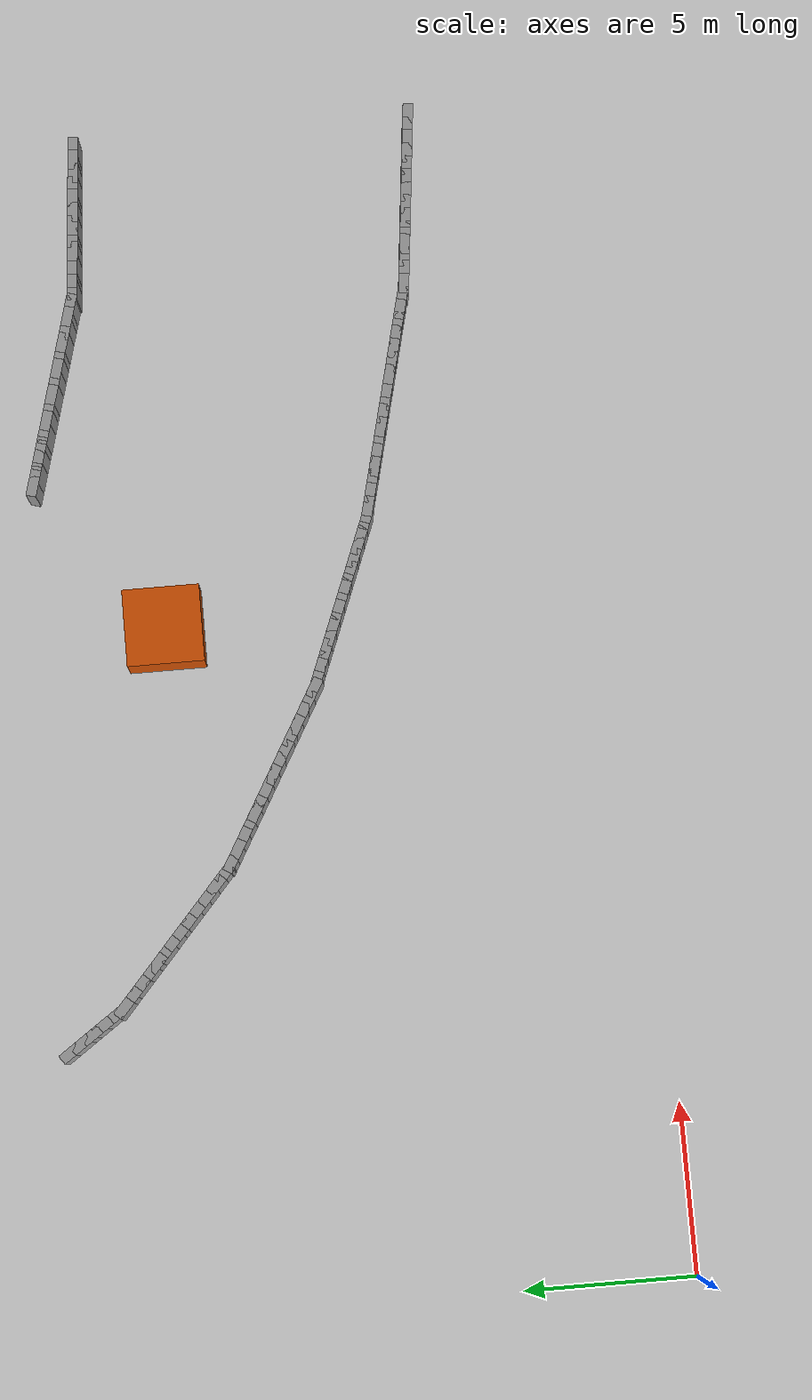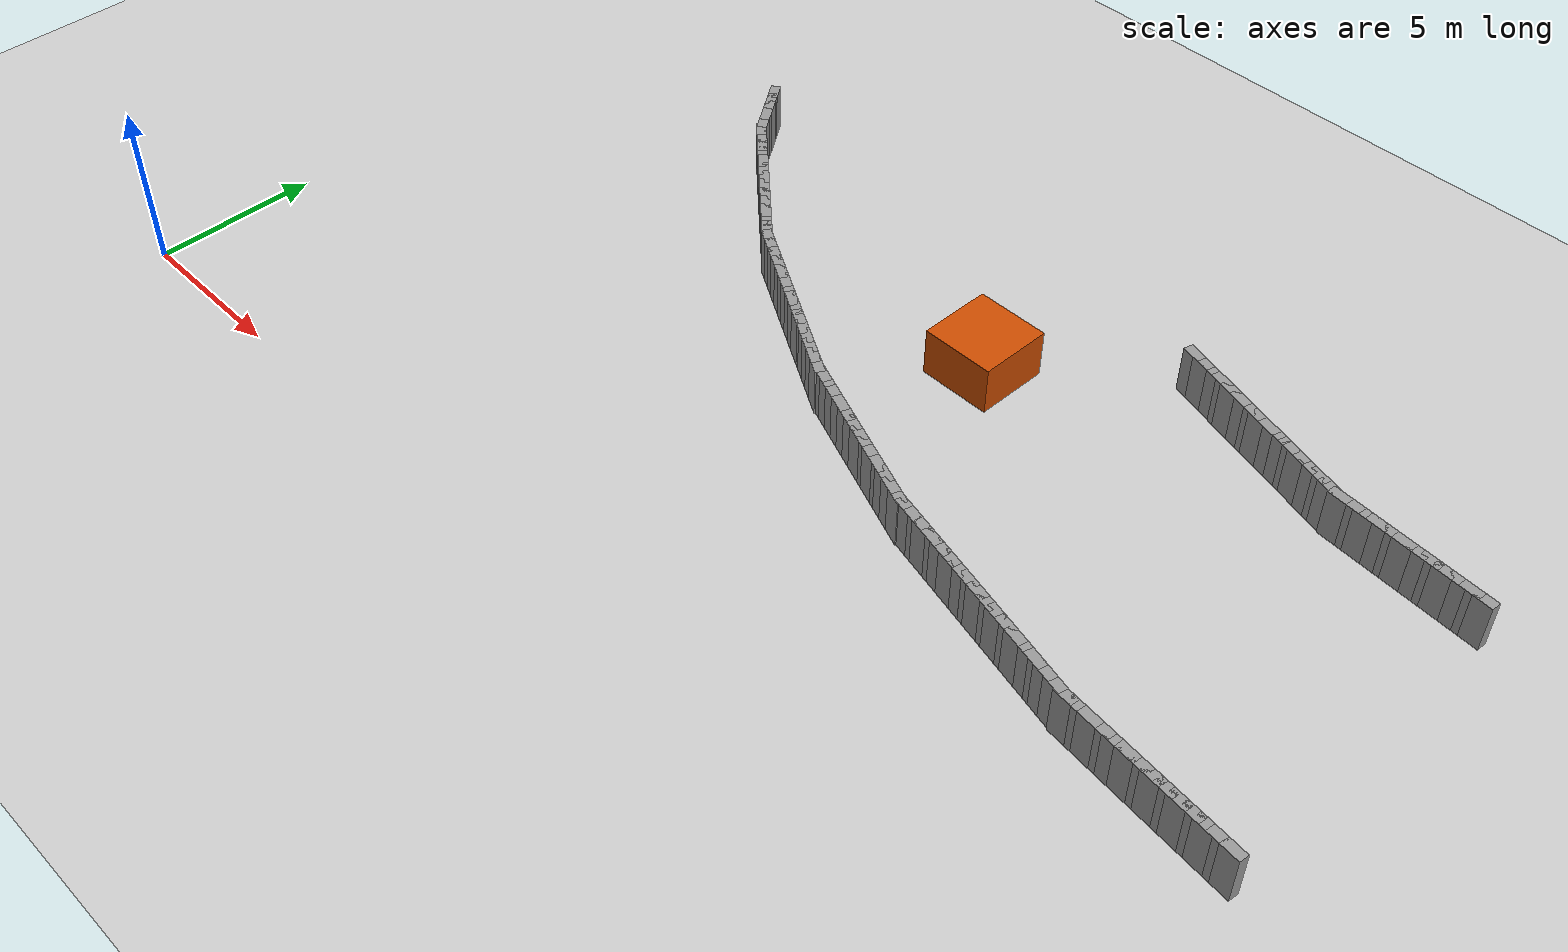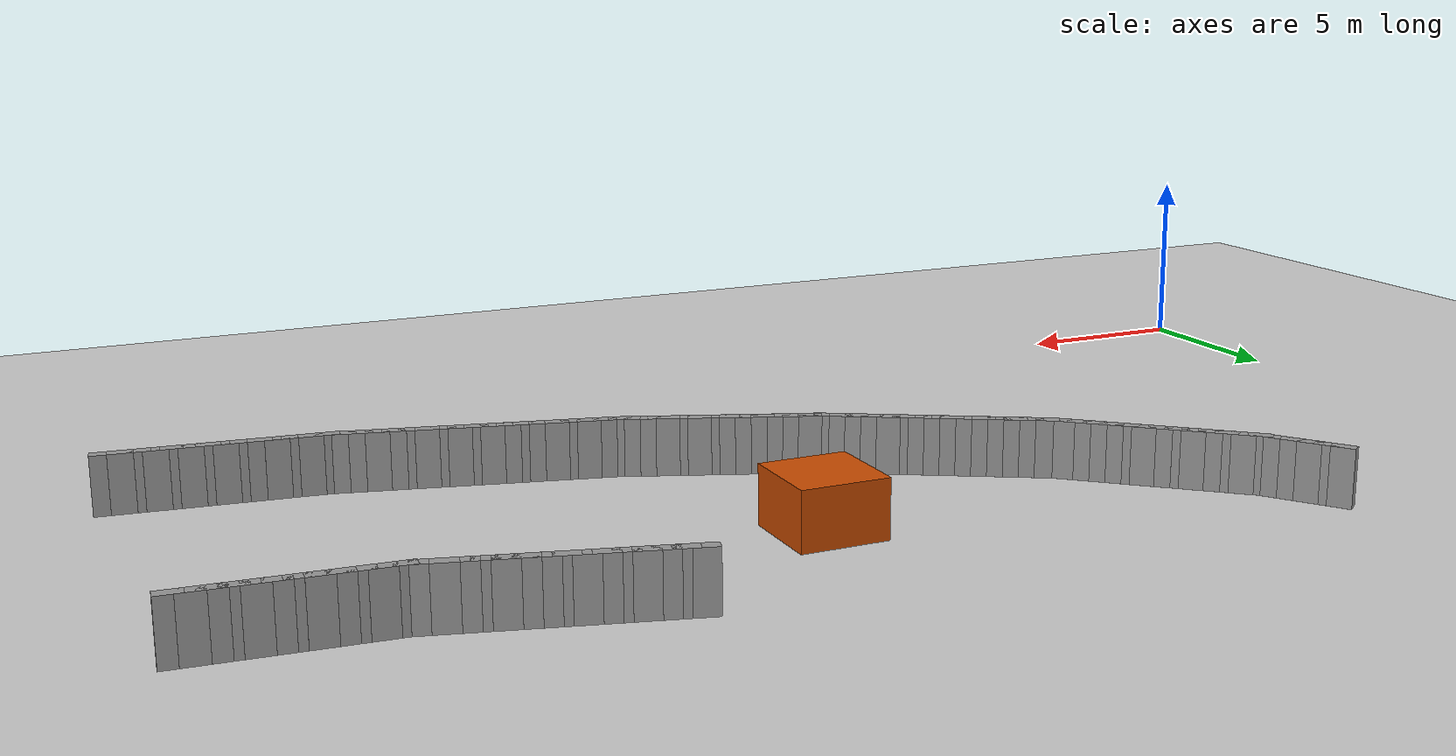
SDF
<sdf version="1.5">
 <world name="img_ellipse_obs">
  <include><uri>model://sun</uri></include>
  <include><uri>model://ground_plane</uri></include>
  <model name="wallL_27">
   <static>true</static>
   <pose>7.863 17.387 0.750 0 0 -0.961</pose>
   <link name="link">
    <collision name="col"><geometry><box><size>0.600 0.300 1.500</size></box></geometry></collision>
    <visual name="vis">
     <geometry><box><size>0.600 0.300 1.500</size></box></geometry>
     <material><ambient>0.6 0.6 0.6 1</ambient><diffuse>0.6 0.6 0.6 1</diffuse></material>
    </visual>
   </link>
  </model>
  <model name="wallL_28">
   <static>true</static>
   <pose>8.092 17.059 0.750 0 0 -0.961</pose>
   <link name="link">
    <collision name="col"><geometry><box><size>0.600 0.300 1.500</size></box></geometry></collision>
    <visual name="vis">
     <geometry><box><size>0.600 0.300 1.500</size></box></geometry>
     <material><ambient>0.6 0.6 0.6 1</ambient><diffuse>0.6 0.6 0.6 1</diffuse></material>
    </visual>
   </link>
  </model>
  <model name="wallL_29">
   <static>true</static>
   <pose>8.321 16.732 0.750 0 0 -0.961</pose>
   <link name="link">
    <collision name="col"><geometry><box><size>0.600 0.300 1.500</size></box></geometry></collision>
    <visual name="vis">
     <geometry><box><size>0.600 0.300 1.500</size></box></geometry>
     <material><ambient>0.6 0.6 0.6 1</ambient><diffuse>0.6 0.6 0.6 1</diffuse></material>
    </visual>
   </link>
  </model>
  <model name="wallL_30">
   <static>true</static>
   <pose>8.550 16.404 0.750 0 0 -0.961</pose>
   <link name="link">
    <collision name="col"><geometry><box><size>0.600 0.300 1.500</size></box></geometry></collision>
    <visual name="vis">
     <geometry><box><size>0.600 0.300 1.500</size></box></geometry>
     <material><ambient>0.6 0.6 0.6 1</ambient><diffuse>0.6 0.6 0.6 1</diffuse></material>
    </visual>
   </link>
  </model>
  <model name="wallL_31">
   <static>true</static>
   <pose>8.779 16.076 0.750 0 0 -0.961</pose>
   <link name="link">
    <collision name="col"><geometry><box><size>0.600 0.300 1.500</size></box></geometry></collision>
    <visual name="vis">
     <geometry><box><size>0.600 0.300 1.500</size></box></geometry>
     <material><ambient>0.6 0.6 0.6 1</ambient><diffuse>0.6 0.6 0.6 1</diffuse></material>
    </visual>
   </link>
  </model>
  <model name="wallL_32">
   <static>true</static>
   <pose>9.017 15.756 0.750 0 0 -0.722</pose>
   <link name="link">
    <collision name="col"><geometry><box><size>0.600 0.300 1.500</size></box></geometry></collision>
    <visual name="vis">
     <geometry><box><size>0.600 0.300 1.500</size></box></geometry>
     <material><ambient>0.6 0.6 0.6 1</ambient><diffuse>0.6 0.6 0.6 1</diffuse></material>
    </visual>
   </link>
  </model>
  <model name="wallL_33">
   <static>true</static>
   <pose>9.318 15.492 0.750 0 0 -0.722</pose>
   <link name="link">
    <collision name="col"><geometry><box><size>0.600 0.300 1.500</size></box></geometry></collision>
    <visual name="vis">
     <geometry><box><size>0.600 0.300 1.500</size></box></geometry>
     <material><ambient>0.6 0.6 0.6 1</ambient><diffuse>0.6 0.6 0.6 1</diffuse></material>
    </visual>
   </link>
  </model>
  <model name="wallL_34">
   <static>true</static>
   <pose>9.618 15.227 0.750 0 0 -0.722</pose>
   <link name="link">
    <collision name="col"><geometry><box><size>0.600 0.300 1.500</size></box></geometry></collision>
    <visual name="vis">
     <geometry><box><size>0.600 0.300 1.500</size></box></geometry>
     <material><ambient>0.6 0.6 0.6 1</ambient><diffuse>0.6 0.6 0.6 1</diffuse></material>
    </visual>
   </link>
  </model>
  <model name="wallL_35">
   <static>true</static>
   <pose>9.918 14.963 0.750 0 0 -0.722</pose>
   <link name="link">
    <collision name="col"><geometry><box><size>0.600 0.300 1.500</size></box></geometry></collision>
    <visual name="vis">
     <geometry><box><size>0.600 0.300 1.500</size></box></geometry>
     <material><ambient>0.6 0.6 0.6 1</ambient><diffuse>0.6 0.6 0.6 1</diffuse></material>
    </visual>
   </link>
  </model>
  <model name="wallL_36">
   <static>true</static>
   <pose>10.218 14.699 0.750 0 0 -0.722</pose>
   <link name="link">
    <collision name="col"><geometry><box><size>0.600 0.300 1.500</size></box></geometry></collision>
    <visual name="vis">
     <geometry><box><size>0.600 0.300 1.500</size></box></geometry>
     <material><ambient>0.6 0.6 0.6 1</ambient><diffuse>0.6 0.6 0.6 1</diffuse></material>
    </visual>
   </link>
  </model>
  <model name="wallL_37">
   <static>true</static>
   <pose>10.518 14.434 0.750 0 0 -0.722</pose>
   <link name="link">
    <collision name="col"><geometry><box><size>0.600 0.300 1.500</size></box></geometry></collision>
    <visual name="vis">
     <geometry><box><size>0.600 0.300 1.500</size></box></geometry>
     <material><ambient>0.6 0.6 0.6 1</ambient><diffuse>0.6 0.6 0.6 1</diffuse></material>
    </visual>
   </link>
  </model>
  <model name="wallL_38">
   <static>true</static>
   <pose>10.819 14.170 0.750 0 0 -0.722</pose>
   <link name="link">
    <collision name="col"><geometry><box><size>0.600 0.300 1.500</size></box></geometry></collision>
    <visual name="vis">
     <geometry><box><size>0.600 0.300 1.500</size></box></geometry>
     <material><ambient>0.6 0.6 0.6 1</ambient><diffuse>0.6 0.6 0.6 1</diffuse></material>
    </visual>
   </link>
  </model>
  <model name="wallL_39">
   <static>true</static>
   <pose>11.119 13.906 0.750 0 0 -0.722</pose>
   <link name="link">
    <collision name="col"><geometry><box><size>0.600 0.300 1.500</size></box></geometry></collision>
    <visual name="vis">
     <geometry><box><size>0.600 0.300 1.500</size></box></geometry>
     <material><ambient>0.6 0.6 0.6 1</ambient><diffuse>0.6 0.6 0.6 1</diffuse></material>
    </visual>
   </link>
  </model>
  <model name="wallL_40">
   <static>true</static>
   <pose>11.419 13.641 0.750 0 0 -0.722</pose>
   <link name="link">
    <collision name="col"><geometry><box><size>0.600 0.300 1.500</size></box></geometry></collision>
    <visual name="vis">
     <geometry><box><size>0.600 0.300 1.500</size></box></geometry>
     <material><ambient>0.6 0.6 0.6 1</ambient><diffuse>0.6 0.6 0.6 1</diffuse></material>
    </visual>
   </link>
  </model>
  <model name="wallL_41">
   <static>true</static>
   <pose>11.719 13.377 0.750 0 0 -0.722</pose>
   <link name="link">
    <collision name="col"><geometry><box><size>0.600 0.300 1.500</size></box></geometry></collision>
    <visual name="vis">
     <geometry><box><size>0.600 0.300 1.500</size></box></geometry>
     <material><ambient>0.6 0.6 0.6 1</ambient><diffuse>0.6 0.6 0.6 1</diffuse></material>
    </visual>
   </link>
  </model>
  <model name="wallL_42">
   <static>true</static>
   <pose>12.019 13.113 0.750 0 0 -0.722</pose>
   <link name="link">
    <collision name="col"><geometry><box><size>0.600 0.300 1.500</size></box></geometry></collision>
    <visual name="vis">
     <geometry><box><size>0.600 0.300 1.500</size></box></geometry>
     <material><ambient>0.6 0.6 0.6 1</ambient><diffuse>0.6 0.6 0.6 1</diffuse></material>
    </visual>
   </link>
  </model>
  <model name="wallL_43">
   <static>true</static>
   <pose>12.320 12.848 0.750 0 0 -0.722</pose>
   <link name="link">
    <collision name="col"><geometry><box><size>0.600 0.300 1.500</size></box></geometry></collision>
    <visual name="vis">
     <geometry><box><size>0.600 0.300 1.500</size></box></geometry>
     <material><ambient>0.6 0.6 0.6 1</ambient><diffuse>0.6 0.6 0.6 1</diffuse></material>
    </visual>
   </link>
  </model>
  <model name="wallL_44">
   <static>true</static>
   <pose>12.620 12.584 0.750 0 0 -0.722</pose>
   <link name="link">
    <collision name="col"><geometry><box><size>0.600 0.300 1.500</size></box></geometry></collision>
    <visual name="vis">
     <geometry><box><size>0.600 0.300 1.500</size></box></geometry>
     <material><ambient>0.6 0.6 0.6 1</ambient><diffuse>0.6 0.6 0.6 1</diffuse></material>
    </visual>
   </link>
  </model>
  <model name="wallL_45">
   <static>true</static>
   <pose>12.939 12.346 0.750 0 0 -0.520</pose>
   <link name="link">
    <collision name="col"><geometry><box><size>0.600 0.300 1.500</size></box></geometry></collision>
    <visual name="vis">
     <geometry><box><size>0.600 0.300 1.500</size></box></geometry>
     <material><ambient>0.6 0.6 0.6 1</ambient><diffuse>0.6 0.6 0.6 1</diffuse></material>
    </visual>
   </link>
  </model>
  <model name="wallL_46">
   <static>true</static>
   <pose>13.286 12.147 0.750 0 0 -0.520</pose>
   <link name="link">
    <collision name="col"><geometry><box><size>0.600 0.300 1.500</size></box></geometry></collision>
    <visual name="vis">
     <geometry><box><size>0.600 0.300 1.500</size></box></geometry>
     <material><ambient>0.6 0.6 0.6 1</ambient><diffuse>0.6 0.6 0.6 1</diffuse></material>
    </visual>
   </link>
  </model>
  <model name="wallL_47">
   <static>true</static>
   <pose>13.633 11.948 0.750 0 0 -0.520</pose>
   <link name="link">
    <collision name="col"><geometry><box><size>0.600 0.300 1.500</size></box></geometry></collision>
    <visual name="vis">
     <geometry><box><size>0.600 0.300 1.500</size></box></geometry>
     <material><ambient>0.6 0.6 0.6 1</ambient><diffuse>0.6 0.6 0.6 1</diffuse></material>
    </visual>
   </link>
  </model>
  <model name="wallL_48">
   <static>true</static>
   <pose>13.980 11.749 0.750 0 0 -0.520</pose>
   <link name="link">
    <collision name="col"><geometry><box><size>0.600 0.300 1.500</size></box></geometry></collision>
    <visual name="vis">
     <geometry><box><size>0.600 0.300 1.500</size></box></geometry>
     <material><ambient>0.6 0.6 0.6 1</ambient><diffuse>0.6 0.6 0.6 1</diffuse></material>
    </visual>
   </link>
  </model>
  <model name="wallL_49">
   <static>true</static>
   <pose>14.327 11.550 0.750 0 0 -0.520</pose>
   <link name="link">
    <collision name="col"><geometry><box><size>0.600 0.300 1.500</size></box></geometry></collision>
    <visual name="vis">
     <geometry><box><size>0.600 0.300 1.500</size></box></geometry>
     <material><ambient>0.6 0.6 0.6 1</ambient><diffuse>0.6 0.6 0.6 1</diffuse></material>
    </visual>
   </link>
  </model>
  <model name="wallL_50">
   <static>true</static>
   <pose>14.674 11.351 0.750 0 0 -0.520</pose>
   <link name="link">
    <collision name="col"><geometry><box><size>0.600 0.300 1.500</size></box></geometry></collision>
    <visual name="vis">
     <geometry><box><size>0.600 0.300 1.500</size></box></geometry>
     <material><ambient>0.6 0.6 0.6 1</ambient><diffuse>0.6 0.6 0.6 1</diffuse></material>
    </visual>
   </link>
  </model>
  <model name="wallL_51">
   <static>true</static>
   <pose>15.021 11.152 0.750 0 0 -0.520</pose>
   <link name="link">
    <collision name="col"><geometry><box><size>0.600 0.300 1.500</size></box></geometry></collision>
    <visual name="vis">
     <geometry><box><size>0.600 0.300 1.500</size></box></geometry>
     <material><ambient>0.6 0.6 0.6 1</ambient><diffuse>0.6 0.6 0.6 1</diffuse></material>
    </visual>
   </link>
  </model>
  <model name="wallL_52">
   <static>true</static>
   <pose>15.368 10.953 0.750 0 0 -0.520</pose>
   <link name="link">
    <collision name="col"><geometry><box><size>0.600 0.300 1.500</size></box></geometry></collision>
    <visual name="vis">
     <geometry><box><size>0.600 0.300 1.500</size></box></geometry>
     <material><ambient>0.6 0.6 0.6 1</ambient><diffuse>0.6 0.6 0.6 1</diffuse></material>
    </visual>
   </link>
  </model>
  <model name="wallL_53">
   <static>true</static>
   <pose>15.715 10.754 0.750 0 0 -0.520</pose>
   <link name="link">
    <collision name="col"><geometry><box><size>0.600 0.300 1.500</size></box></geometry></collision>
    <visual name="vis">
     <geometry><box><size>0.600 0.300 1.500</size></box></geometry>
     <material><ambient>0.6 0.6 0.6 1</ambient><diffuse>0.6 0.6 0.6 1</diffuse></material>
    </visual>
   </link>
  </model>
  <model name="wallL_54">
   <static>true</static>
   <pose>16.062 10.555 0.750 0 0 -0.520</pose>
   <link name="link">
    <collision name="col"><geometry><box><size>0.600 0.300 1.500</size></box></geometry></collision>
    <visual name="vis">
     <geometry><box><size>0.600 0.300 1.500</size></box></geometry>
     <material><ambient>0.6 0.6 0.6 1</ambient><diffuse>0.6 0.6 0.6 1</diffuse></material>
    </visual>
   </link>
  </model>
  <model name="wallL_55">
   <static>true</static>
   <pose>16.409 10.357 0.750 0 0 -0.520</pose>
   <link name="link">
    <collision name="col"><geometry><box><size>0.600 0.300 1.500</size></box></geometry></collision>
    <visual name="vis">
     <geometry><box><size>0.600 0.300 1.500</size></box></geometry>
     <material><ambient>0.6 0.6 0.6 1</ambient><diffuse>0.6 0.6 0.6 1</diffuse></material>
    </visual>
   </link>
  </model>
  <model name="wallL_56">
   <static>true</static>
   <pose>16.756 10.158 0.750 0 0 -0.520</pose>
   <link name="link">
    <collision name="col"><geometry><box><size>0.600 0.300 1.500</size></box></geometry></collision>
    <visual name="vis">
     <geometry><box><size>0.600 0.300 1.500</size></box></geometry>
     <material><ambient>0.6 0.6 0.6 1</ambient><diffuse>0.6 0.6 0.6 1</diffuse></material>
    </visual>
   </link>
  </model>
  <model name="wallL_57">
   <static>true</static>
   <pose>17.103 9.959 0.750 0 0 -0.520</pose>
   <link name="link">
    <collision name="col"><geometry><box><size>0.600 0.300 1.500</size></box></geometry></collision>
    <visual name="vis">
     <geometry><box><size>0.600 0.300 1.500</size></box></geometry>
     <material><ambient>0.6 0.6 0.6 1</ambient><diffuse>0.6 0.6 0.6 1</diffuse></material>
    </visual>
   </link>
  </model>
  <model name="wallL_58">
   <static>true</static>
   <pose>17.450 9.760 0.750 0 0 -0.520</pose>
   <link name="link">
    <collision name="col"><geometry><box><size>0.600 0.300 1.500</size></box></geometry></collision>
    <visual name="vis">
     <geometry><box><size>0.600 0.300 1.500</size></box></geometry>
     <material><ambient>0.6 0.6 0.6 1</ambient><diffuse>0.6 0.6 0.6 1</diffuse></material>
    </visual>
   </link>
  </model>
  <model name="wallL_59">
   <static>true</static>
   <pose>17.797 9.561 0.750 0 0 -0.520</pose>
   <link name="link">
    <collision name="col"><geometry><box><size>0.600 0.300 1.500</size></box></geometry></collision>
    <visual name="vis">
     <geometry><box><size>0.600 0.300 1.500</size></box></geometry>
     <material><ambient>0.6 0.6 0.6 1</ambient><diffuse>0.6 0.6 0.6 1</diffuse></material>
    </visual>
   </link>
  </model>
  <model name="wallL_60">
   <static>true</static>
   <pose>18.167 9.410 0.750 0 0 -0.376</pose>
   <link name="link">
    <collision name="col"><geometry><box><size>0.600 0.300 1.500</size></box></geometry></collision>
    <visual name="vis">
     <geometry><box><size>0.600 0.300 1.500</size></box></geometry>
     <material><ambient>0.6 0.6 0.6 1</ambient><diffuse>0.6 0.6 0.6 1</diffuse></material>
    </visual>
   </link>
  </model>
  <model name="wallL_61">
   <static>true</static>
   <pose>18.539 9.263 0.750 0 0 -0.376</pose>
   <link name="link">
    <collision name="col"><geometry><box><size>0.600 0.300 1.500</size></box></geometry></collision>
    <visual name="vis">
     <geometry><box><size>0.600 0.300 1.500</size></box></geometry>
     <material><ambient>0.6 0.6 0.6 1</ambient><diffuse>0.6 0.6 0.6 1</diffuse></material>
    </visual>
   </link>
  </model>
  <model name="wallL_62">
   <static>true</static>
   <pose>18.911 9.116 0.750 0 0 -0.376</pose>
   <link name="link">
    <collision name="col"><geometry><box><size>0.600 0.300 1.500</size></box></geometry></collision>
    <visual name="vis">
     <geometry><box><size>0.600 0.300 1.500</size></box></geometry>
     <material><ambient>0.6 0.6 0.6 1</ambient><diffuse>0.6 0.6 0.6 1</diffuse></material>
    </visual>
   </link>
  </model>
  <model name="wallL_63">
   <static>true</static>
   <pose>19.283 8.969 0.750 0 0 -0.376</pose>
   <link name="link">
    <collision name="col"><geometry><box><size>0.600 0.300 1.500</size></box></geometry></collision>
    <visual name="vis">
     <geometry><box><size>0.600 0.300 1.500</size></box></geometry>
     <material><ambient>0.6 0.6 0.6 1</ambient><diffuse>0.6 0.6 0.6 1</diffuse></material>
    </visual>
   </link>
  </model>
  <model name="wallL_64">
   <static>true</static>
   <pose>19.655 8.822 0.750 0 0 -0.376</pose>
   <link name="link">
    <collision name="col"><geometry><box><size>0.600 0.300 1.500</size></box></geometry></collision>
    <visual name="vis">
     <geometry><box><size>0.600 0.300 1.500</size></box></geometry>
     <material><ambient>0.6 0.6 0.6 1</ambient><diffuse>0.6 0.6 0.6 1</diffuse></material>
    </visual>
   </link>
  </model>
  <model name="wallL_65">
   <static>true</static>
   <pose>20.027 8.675 0.750 0 0 -0.376</pose>
   <link name="link">
    <collision name="col"><geometry><box><size>0.600 0.300 1.500</size></box></geometry></collision>
    <visual name="vis">
     <geometry><box><size>0.600 0.300 1.500</size></box></geometry>
     <material><ambient>0.6 0.6 0.6 1</ambient><diffuse>0.6 0.6 0.6 1</diffuse></material>
    </visual>
   </link>
  </model>
  <model name="wallL_66">
   <static>true</static>
   <pose>20.399 8.528 0.750 0 0 -0.376</pose>
   <link name="link">
    <collision name="col"><geometry><box><size>0.600 0.300 1.500</size></box></geometry></collision>
    <visual name="vis">
     <geometry><box><size>0.600 0.300 1.500</size></box></geometry>
     <material><ambient>0.6 0.6 0.6 1</ambient><diffuse>0.6 0.6 0.6 1</diffuse></material>
    </visual>
   </link>
  </model>
  <model name="wallL_67">
   <static>true</static>
   <pose>20.772 8.381 0.750 0 0 -0.376</pose>
   <link name="link">
    <collision name="col"><geometry><box><size>0.600 0.300 1.500</size></box></geometry></collision>
    <visual name="vis">
     <geometry><box><size>0.600 0.300 1.500</size></box></geometry>
     <material><ambient>0.6 0.6 0.6 1</ambient><diffuse>0.6 0.6 0.6 1</diffuse></material>
    </visual>
   </link>
  </model>
  <model name="wallL_68">
   <static>true</static>
   <pose>21.144 8.234 0.750 0 0 -0.376</pose>
   <link name="link">
    <collision name="col"><geometry><box><size>0.600 0.300 1.500</size></box></geometry></collision>
    <visual name="vis">
     <geometry><box><size>0.600 0.300 1.500</size></box></geometry>
     <material><ambient>0.6 0.6 0.6 1</ambient><diffuse>0.6 0.6 0.6 1</diffuse></material>
    </visual>
   </link>
  </model>
  <model name="wallL_69">
   <static>true</static>
   <pose>21.516 8.088 0.750 0 0 -0.376</pose>
   <link name="link">
    <collision name="col"><geometry><box><size>0.600 0.300 1.500</size></box></geometry></collision>
    <visual name="vis">
     <geometry><box><size>0.600 0.300 1.500</size></box></geometry>
     <material><ambient>0.6 0.6 0.6 1</ambient><diffuse>0.6 0.6 0.6 1</diffuse></material>
    </visual>
   </link>
  </model>
  <model name="wallL_70">
   <static>true</static>
   <pose>21.888 7.941 0.750 0 0 -0.376</pose>
   <link name="link">
    <collision name="col"><geometry><box><size>0.600 0.300 1.500</size></box></geometry></collision>
    <visual name="vis">
     <geometry><box><size>0.600 0.300 1.500</size></box></geometry>
     <material><ambient>0.6 0.6 0.6 1</ambient><diffuse>0.6 0.6 0.6 1</diffuse></material>
    </visual>
   </link>
  </model>
  <model name="wallL_71">
   <static>true</static>
   <pose>22.260 7.794 0.750 0 0 -0.376</pose>
   <link name="link">
    <collision name="col"><geometry><box><size>0.600 0.300 1.500</size></box></geometry></collision>
    <visual name="vis">
     <geometry><box><size>0.600 0.300 1.500</size></box></geometry>
     <material><ambient>0.6 0.6 0.6 1</ambient><diffuse>0.6 0.6 0.6 1</diffuse></material>
    </visual>
   </link>
  </model>
  <model name="wallL_72">
   <static>true</static>
   <pose>22.632 7.647 0.750 0 0 -0.376</pose>
   <link name="link">
    <collision name="col"><geometry><box><size>0.600 0.300 1.500</size></box></geometry></collision>
    <visual name="vis">
     <geometry><box><size>0.600 0.300 1.500</size></box></geometry>
     <material><ambient>0.6 0.6 0.6 1</ambient><diffuse>0.6 0.6 0.6 1</diffuse></material>
    </visual>
   </link>
  </model>
  <model name="wallL_73">
   <static>true</static>
   <pose>23.018 7.543 0.750 0 0 -0.242</pose>
   <link name="link">
    <collision name="col"><geometry><box><size>0.600 0.300 1.500</size></box></geometry></collision>
    <visual name="vis">
     <geometry><box><size>0.600 0.300 1.500</size></box></geometry>
     <material><ambient>0.6 0.6 0.6 1</ambient><diffuse>0.6 0.6 0.6 1</diffuse></material>
    </visual>
   </link>
  </model>
  <model name="wallL_74">
   <static>true</static>
   <pose>23.406 7.448 0.750 0 0 -0.242</pose>
   <link name="link">
    <collision name="col"><geometry><box><size>0.600 0.300 1.500</size></box></geometry></collision>
    <visual name="vis">
     <geometry><box><size>0.600 0.300 1.500</size></box></geometry>
     <material><ambient>0.6 0.6 0.6 1</ambient><diffuse>0.6 0.6 0.6 1</diffuse></material>
    </visual>
   </link>
  </model>
  <model name="wallL_75">
   <static>true</static>
   <pose>23.794 7.352 0.750 0 0 -0.242</pose>
   <link name="link">
    <collision name="col"><geometry><box><size>0.600 0.300 1.500</size></box></geometry></collision>
    <visual name="vis">
     <geometry><box><size>0.600 0.300 1.500</size></box></geometry>
     <material><ambient>0.6 0.6 0.6 1</ambient><diffuse>0.6 0.6 0.6 1</diffuse></material>
    </visual>
   </link>
  </model>
  <model name="wallL_76">
   <static>true</static>
   <pose>24.183 7.256 0.750 0 0 -0.242</pose>
   <link name="link">
    <collision name="col"><geometry><box><size>0.600 0.300 1.500</size></box></geometry></collision>
    <visual name="vis">
     <geometry><box><size>0.600 0.300 1.500</size></box></geometry>
     <material><ambient>0.6 0.6 0.6 1</ambient><diffuse>0.6 0.6 0.6 1</diffuse></material>
    </visual>
   </link>
  </model>
  <model name="wallL_77">
   <static>true</static>
   <pose>24.571 7.160 0.750 0 0 -0.242</pose>
   <link name="link">
    <collision name="col"><geometry><box><size>0.600 0.300 1.500</size></box></geometry></collision>
    <visual name="vis">
     <geometry><box><size>0.600 0.300 1.500</size></box></geometry>
     <material><ambient>0.6 0.6 0.6 1</ambient><diffuse>0.6 0.6 0.6 1</diffuse></material>
    </visual>
   </link>
  </model>
  <model name="wallL_78">
   <static>true</static>
   <pose>24.959 7.064 0.750 0 0 -0.242</pose>
   <link name="link">
    <collision name="col"><geometry><box><size>0.600 0.300 1.500</size></box></geometry></collision>
    <visual name="vis">
     <geometry><box><size>0.600 0.300 1.500</size></box></geometry>
     <material><ambient>0.6 0.6 0.6 1</ambient><diffuse>0.6 0.6 0.6 1</diffuse></material>
    </visual>
   </link>
  </model>
  <model name="wallL_79">
   <static>true</static>
   <pose>25.348 6.968 0.750 0 0 -0.242</pose>
   <link name="link">
    <collision name="col"><geometry><box><size>0.600 0.300 1.500</size></box></geometry></collision>
    <visual name="vis">
     <geometry><box><size>0.600 0.300 1.500</size></box></geometry>
     <material><ambient>0.6 0.6 0.6 1</ambient><diffuse>0.6 0.6 0.6 1</diffuse></material>
    </visual>
   </link>
  </model>
  <model name="wallL_80">
   <static>true</static>
   <pose>25.736 6.873 0.750 0 0 -0.242</pose>
   <link name="link">
    <collision name="col"><geometry><box><size>0.600 0.300 1.500</size></box></geometry></collision>
    <visual name="vis">
     <geometry><box><size>0.600 0.300 1.500</size></box></geometry>
     <material><ambient>0.6 0.6 0.6 1</ambient><diffuse>0.6 0.6 0.6 1</diffuse></material>
    </visual>
   </link>
  </model>
  <model name="wallL_81">
   <static>true</static>
   <pose>26.124 6.777 0.750 0 0 -0.242</pose>
   <link name="link">
    <collision name="col"><geometry><box><size>0.600 0.300 1.500</size></box></geometry></collision>
    <visual name="vis">
     <geometry><box><size>0.600 0.300 1.500</size></box></geometry>
     <material><ambient>0.6 0.6 0.6 1</ambient><diffuse>0.6 0.6 0.6 1</diffuse></material>
    </visual>
   </link>
  </model>
  <model name="wallL_82">
   <static>true</static>
   <pose>26.513 6.681 0.750 0 0 -0.242</pose>
   <link name="link">
    <collision name="col"><geometry><box><size>0.600 0.300 1.500</size></box></geometry></collision>
    <visual name="vis">
     <geometry><box><size>0.600 0.300 1.500</size></box></geometry>
     <material><ambient>0.6 0.6 0.6 1</ambient><diffuse>0.6 0.6 0.6 1</diffuse></material>
    </visual>
   </link>
  </model>
  <model name="wallL_83">
   <static>true</static>
   <pose>26.901 6.585 0.750 0 0 -0.242</pose>
   <link name="link">
    <collision name="col"><geometry><box><size>0.600 0.300 1.500</size></box></geometry></collision>
    <visual name="vis">
     <geometry><box><size>0.600 0.300 1.500</size></box></geometry>
     <material><ambient>0.6 0.6 0.6 1</ambient><diffuse>0.6 0.6 0.6 1</diffuse></material>
    </visual>
   </link>
  </model>
  <model name="wallL_84">
   <static>true</static>
   <pose>27.290 6.489 0.750 0 0 -0.242</pose>
   <link name="link">
    <collision name="col"><geometry><box><size>0.600 0.300 1.500</size></box></geometry></collision>
    <visual name="vis">
     <geometry><box><size>0.600 0.300 1.500</size></box></geometry>
     <material><ambient>0.6 0.6 0.6 1</ambient><diffuse>0.6 0.6 0.6 1</diffuse></material>
    </visual>
   </link>
  </model>
  <model name="wallL_85">
   <static>true</static>
   <pose>27.678 6.393 0.750 0 0 -0.242</pose>
   <link name="link">
    <collision name="col"><geometry><box><size>0.600 0.300 1.500</size></box></geometry></collision>
    <visual name="vis">
     <geometry><box><size>0.600 0.300 1.500</size></box></geometry>
     <material><ambient>0.6 0.6 0.6 1</ambient><diffuse>0.6 0.6 0.6 1</diffuse></material>
    </visual>
   </link>
  </model>
  <model name="wallL_86">
   <static>true</static>
   <pose>28.066 6.298 0.750 0 0 -0.242</pose>
   <link name="link">
    <collision name="col"><geometry><box><size>0.600 0.300 1.500</size></box></geometry></collision>
    <visual name="vis">
     <geometry><box><size>0.600 0.300 1.500</size></box></geometry>
     <material><ambient>0.6 0.6 0.6 1</ambient><diffuse>0.6 0.6 0.6 1</diffuse></material>
    </visual>
   </link>
  </model>
  <model name="wallL_87">
   <static>true</static>
   <pose>28.455 6.202 0.750 0 0 -0.242</pose>
   <link name="link">
    <collision name="col"><geometry><box><size>0.600 0.300 1.500</size></box></geometry></collision>
    <visual name="vis">
     <geometry><box><size>0.600 0.300 1.500</size></box></geometry>
     <material><ambient>0.6 0.6 0.6 1</ambient><diffuse>0.6 0.6 0.6 1</diffuse></material>
    </visual>
   </link>
  </model>
  <model name="wallL_88">
   <static>true</static>
   <pose>28.843 6.106 0.750 0 0 -0.242</pose>
   <link name="link">
    <collision name="col"><geometry><box><size>0.600 0.300 1.500</size></box></geometry></collision>
    <visual name="vis">
     <geometry><box><size>0.600 0.300 1.500</size></box></geometry>
     <material><ambient>0.6 0.6 0.6 1</ambient><diffuse>0.6 0.6 0.6 1</diffuse></material>
    </visual>
   </link>
  </model>
  <model name="wallL_89">
   <static>true</static>
   <pose>29.231 6.010 0.750 0 0 -0.242</pose>
   <link name="link">
    <collision name="col"><geometry><box><size>0.600 0.300 1.500</size></box></geometry></collision>
    <visual name="vis">
     <geometry><box><size>0.600 0.300 1.500</size></box></geometry>
     <material><ambient>0.6 0.6 0.6 1</ambient><diffuse>0.6 0.6 0.6 1</diffuse></material>
    </visual>
   </link>
  </model>
  <model name="wallL_90">
   <static>true</static>
   <pose>29.621 5.920 0.750 0 0 -0.109</pose>
   <link name="link">
    <collision name="col"><geometry><box><size>0.600 0.300 1.500</size></box></geometry></collision>
    <visual name="vis">
     <geometry><box><size>0.600 0.300 1.500</size></box></geometry>
     <material><ambient>0.6 0.6 0.6 1</ambient><diffuse>0.6 0.6 0.6 1</diffuse></material>
    </visual>
   </link>
  </model>
  <model name="wallL_91">
   <static>true</static>
   <pose>30.018 5.877 0.750 0 0 -0.109</pose>
   <link name="link">
    <collision name="col"><geometry><box><size>0.600 0.300 1.500</size></box></geometry></collision>
    <visual name="vis">
     <geometry><box><size>0.600 0.300 1.500</size></box></geometry>
     <material><ambient>0.6 0.6 0.6 1</ambient><diffuse>0.6 0.6 0.6 1</diffuse></material>
    </visual>
   </link>
  </model>
  <model name="wallL_92">
   <static>true</static>
   <pose>30.416 5.833 0.750 0 0 -0.109</pose>
   <link name="link">
    <collision name="col"><geometry><box><size>0.600 0.300 1.500</size></box></geometry></collision>
    <visual name="vis">
     <geometry><box><size>0.600 0.300 1.500</size></box></geometry>
     <material><ambient>0.6 0.6 0.6 1</ambient><diffuse>0.6 0.6 0.6 1</diffuse></material>
    </visual>
   </link>
  </model>
  <model name="wallL_93">
   <static>true</static>
   <pose>30.814 5.790 0.750 0 0 -0.109</pose>
   <link name="link">
    <collision name="col"><geometry><box><size>0.600 0.300 1.500</size></box></geometry></collision>
    <visual name="vis">
     <geometry><box><size>0.600 0.300 1.500</size></box></geometry>
     <material><ambient>0.6 0.6 0.6 1</ambient><diffuse>0.6 0.6 0.6 1</diffuse></material>
    </visual>
   </link>
  </model>
  <model name="wallL_94">
   <static>true</static>
   <pose>31.211 5.746 0.750 0 0 -0.109</pose>
   <link name="link">
    <collision name="col"><geometry><box><size>0.600 0.300 1.500</size></box></geometry></collision>
    <visual name="vis">
     <geometry><box><size>0.600 0.300 1.500</size></box></geometry>
     <material><ambient>0.6 0.6 0.6 1</ambient><diffuse>0.6 0.6 0.6 1</diffuse></material>
    </visual>
   </link>
  </model>
  <model name="wallL_95">
   <static>true</static>
   <pose>31.609 5.702 0.750 0 0 -0.109</pose>
   <link name="link">
    <collision name="col"><geometry><box><size>0.600 0.300 1.500</size></box></geometry></collision>
    <visual name="vis">
     <geometry><box><size>0.600 0.300 1.500</size></box></geometry>
     <material><ambient>0.6 0.6 0.6 1</ambient><diffuse>0.6 0.6 0.6 1</diffuse></material>
    </visual>
   </link>
  </model>
  <model name="wallL_96">
   <static>true</static>
   <pose>32.006 5.659 0.750 0 0 -0.109</pose>
   <link name="link">
    <collision name="col"><geometry><box><size>0.600 0.300 1.500</size></box></geometry></collision>
    <visual name="vis">
     <geometry><box><size>0.600 0.300 1.500</size></box></geometry>
     <material><ambient>0.6 0.6 0.6 1</ambient><diffuse>0.6 0.6 0.6 1</diffuse></material>
    </visual>
   </link>
  </model>
  <model name="wallL_97">
   <static>true</static>
   <pose>32.404 5.615 0.750 0 0 -0.109</pose>
   <link name="link">
    <collision name="col"><geometry><box><size>0.600 0.300 1.500</size></box></geometry></collision>
    <visual name="vis">
     <geometry><box><size>0.600 0.300 1.500</size></box></geometry>
     <material><ambient>0.6 0.6 0.6 1</ambient><diffuse>0.6 0.6 0.6 1</diffuse></material>
    </visual>
   </link>
  </model>
  <model name="wallL_98">
   <static>true</static>
   <pose>32.802 5.572 0.750 0 0 -0.109</pose>
   <link name="link">
    <collision name="col"><geometry><box><size>0.600 0.300 1.500</size></box></geometry></collision>
    <visual name="vis">
     <geometry><box><size>0.600 0.300 1.500</size></box></geometry>
     <material><ambient>0.6 0.6 0.6 1</ambient><diffuse>0.6 0.6 0.6 1</diffuse></material>
    </visual>
   </link>
  </model>
  <model name="wallL_99">
   <static>true</static>
   <pose>33.199 5.528 0.750 0 0 -0.109</pose>
   <link name="link">
    <collision name="col"><geometry><box><size>0.600 0.300 1.500</size></box></geometry></collision>
    <visual name="vis">
     <geometry><box><size>0.600 0.300 1.500</size></box></geometry>
     <material><ambient>0.6 0.6 0.6 1</ambient><diffuse>0.6 0.6 0.6 1</diffuse></material>
    </visual>
   </link>
  </model>
  <model name="wallL_100">
   <static>true</static>
   <pose>33.597 5.485 0.750 0 0 -0.109</pose>
   <link name="link">
    <collision name="col"><geometry><box><size>0.600 0.300 1.500</size></box></geometry></collision>
    <visual name="vis">
     <geometry><box><size>0.600 0.300 1.500</size></box></geometry>
     <material><ambient>0.6 0.6 0.6 1</ambient><diffuse>0.6 0.6 0.6 1</diffuse></material>
    </visual>
   </link>
  </model>
  <model name="wallL_101">
   <static>true</static>
   <pose>33.995 5.441 0.750 0 0 -0.109</pose>
   <link name="link">
    <collision name="col"><geometry><box><size>0.600 0.300 1.500</size></box></geometry></collision>
    <visual name="vis">
     <geometry><box><size>0.600 0.300 1.500</size></box></geometry>
     <material><ambient>0.6 0.6 0.6 1</ambient><diffuse>0.6 0.6 0.6 1</diffuse></material>
    </visual>
   </link>
  </model>
  <model name="wallL_102">
   <static>true</static>
   <pose>34.392 5.398 0.750 0 0 -0.109</pose>
   <link name="link">
    <collision name="col"><geometry><box><size>0.600 0.300 1.500</size></box></geometry></collision>
    <visual name="vis">
     <geometry><box><size>0.600 0.300 1.500</size></box></geometry>
     <material><ambient>0.6 0.6 0.6 1</ambient><diffuse>0.6 0.6 0.6 1</diffuse></material>
    </visual>
   </link>
  </model>
  <model name="wallL_103">
   <static>true</static>
   <pose>34.790 5.354 0.750 0 0 -0.109</pose>
   <link name="link">
    <collision name="col"><geometry><box><size>0.600 0.300 1.500</size></box></geometry></collision>
    <visual name="vis">
     <geometry><box><size>0.600 0.300 1.500</size></box></geometry>
     <material><ambient>0.6 0.6 0.6 1</ambient><diffuse>0.6 0.6 0.6 1</diffuse></material>
    </visual>
   </link>
  </model>
  <model name="wallR_229">
   <static>true</static>
   <pose>34.611 15.384 0.750 0 0 3.066</pose>
   <link name="link">
    <collision name="col"><geometry><box><size>0.600 0.300 1.500</size></box></geometry></collision>
    <visual name="vis">
     <geometry><box><size>0.600 0.300 1.500</size></box></geometry>
     <material><ambient>0.6 0.6 0.6 1</ambient><diffuse>0.6 0.6 0.6 1</diffuse></material>
    </visual>
   </link>
  </model>
  <model name="wallR_230">
   <static>true</static>
   <pose>34.212 15.415 0.750 0 0 3.066</pose>
   <link name="link">
    <collision name="col"><geometry><box><size>0.600 0.300 1.500</size></box></geometry></collision>
    <visual name="vis">
     <geometry><box><size>0.600 0.300 1.500</size></box></geometry>
     <material><ambient>0.6 0.6 0.6 1</ambient><diffuse>0.6 0.6 0.6 1</diffuse></material>
    </visual>
   </link>
  </model>
  <model name="wallR_231">
   <static>true</static>
   <pose>33.813 15.445 0.750 0 0 3.066</pose>
   <link name="link">
    <collision name="col"><geometry><box><size>0.600 0.300 1.500</size></box></geometry></collision>
    <visual name="vis">
     <geometry><box><size>0.600 0.300 1.500</size></box></geometry>
     <material><ambient>0.6 0.6 0.6 1</ambient><diffuse>0.6 0.6 0.6 1</diffuse></material>
    </visual>
   </link>
  </model>
  <model name="wallR_232">
   <static>true</static>
   <pose>33.414 15.475 0.750 0 0 3.066</pose>
   <link name="link">
    <collision name="col"><geometry><box><size>0.600 0.300 1.500</size></box></geometry></collision>
    <visual name="vis">
     <geometry><box><size>0.600 0.300 1.500</size></box></geometry>
     <material><ambient>0.6 0.6 0.6 1</ambient><diffuse>0.6 0.6 0.6 1</diffuse></material>
    </visual>
   </link>
  </model>
  <model name="wallR_233">
   <static>true</static>
   <pose>33.015 15.506 0.750 0 0 3.066</pose>
   <link name="link">
    <collision name="col"><geometry><box><size>0.600 0.300 1.500</size></box></geometry></collision>
    <visual name="vis">
     <geometry><box><size>0.600 0.300 1.500</size></box></geometry>
     <material><ambient>0.6 0.6 0.6 1</ambient><diffuse>0.6 0.6 0.6 1</diffuse></material>
    </visual>
   </link>
  </model>
  <model name="wallR_234">
   <static>true</static>
   <pose>32.616 15.536 0.750 0 0 3.066</pose>
   <link name="link">
    <collision name="col"><geometry><box><size>0.600 0.300 1.500</size></box></geometry></collision>
    <visual name="vis">
     <geometry><box><size>0.600 0.300 1.500</size></box></geometry>
     <material><ambient>0.6 0.6 0.6 1</ambient><diffuse>0.6 0.6 0.6 1</diffuse></material>
    </visual>
   </link>
  </model>
  <model name="wallR_235">
   <static>true</static>
   <pose>32.217 15.566 0.750 0 0 3.066</pose>
   <link name="link">
    <collision name="col"><geometry><box><size>0.600 0.300 1.500</size></box></geometry></collision>
    <visual name="vis">
     <geometry><box><size>0.600 0.300 1.500</size></box></geometry>
     <material><ambient>0.6 0.6 0.6 1</ambient><diffuse>0.6 0.6 0.6 1</diffuse></material>
    </visual>
   </link>
  </model>
  <model name="wallR_236">
   <static>true</static>
   <pose>31.819 15.597 0.750 0 0 3.066</pose>
   <link name="link">
    <collision name="col"><geometry><box><size>0.600 0.300 1.500</size></box></geometry></collision>
    <visual name="vis">
     <geometry><box><size>0.600 0.300 1.500</size></box></geometry>
     <material><ambient>0.6 0.6 0.6 1</ambient><diffuse>0.6 0.6 0.6 1</diffuse></material>
    </visual>
   </link>
  </model>
  <model name="wallR_237">
   <static>true</static>
   <pose>31.420 15.627 0.750 0 0 3.066</pose>
   <link name="link">
    <collision name="col"><geometry><box><size>0.600 0.300 1.500</size></box></geometry></collision>
    <visual name="vis">
     <geometry><box><size>0.600 0.300 1.500</size></box></geometry>
     <material><ambient>0.6 0.6 0.6 1</ambient><diffuse>0.6 0.6 0.6 1</diffuse></material>
    </visual>
   </link>
  </model>
  <model name="wallR_238">
   <static>true</static>
   <pose>31.021 15.657 0.750 0 0 3.066</pose>
   <link name="link">
    <collision name="col"><geometry><box><size>0.600 0.300 1.500</size></box></geometry></collision>
    <visual name="vis">
     <geometry><box><size>0.600 0.300 1.500</size></box></geometry>
     <material><ambient>0.6 0.6 0.6 1</ambient><diffuse>0.6 0.6 0.6 1</diffuse></material>
    </visual>
   </link>
  </model>
  <model name="wallR_239">
   <static>true</static>
   <pose>30.622 15.688 0.750 0 0 3.066</pose>
   <link name="link">
    <collision name="col"><geometry><box><size>0.600 0.300 1.500</size></box></geometry></collision>
    <visual name="vis">
     <geometry><box><size>0.600 0.300 1.500</size></box></geometry>
     <material><ambient>0.6 0.6 0.6 1</ambient><diffuse>0.6 0.6 0.6 1</diffuse></material>
    </visual>
   </link>
  </model>
  <model name="wallR_240">
   <static>true</static>
   <pose>30.223 15.718 0.750 0 0 3.066</pose>
   <link name="link">
    <collision name="col"><geometry><box><size>0.600 0.300 1.500</size></box></geometry></collision>
    <visual name="vis">
     <geometry><box><size>0.600 0.300 1.500</size></box></geometry>
     <material><ambient>0.6 0.6 0.6 1</ambient><diffuse>0.6 0.6 0.6 1</diffuse></material>
    </visual>
   </link>
  </model>
  <model name="wallR_241">
   <static>true</static>
   <pose>29.834 15.806 0.750 0 0 2.873</pose>
   <link name="link">
    <collision name="col"><geometry><box><size>0.600 0.300 1.500</size></box></geometry></collision>
    <visual name="vis">
     <geometry><box><size>0.600 0.300 1.500</size></box></geometry>
     <material><ambient>0.6 0.6 0.6 1</ambient><diffuse>0.6 0.6 0.6 1</diffuse></material>
    </visual>
   </link>
  </model>
  <model name="wallR_242">
   <static>true</static>
   <pose>29.449 15.912 0.750 0 0 2.873</pose>
   <link name="link">
    <collision name="col"><geometry><box><size>0.600 0.300 1.500</size></box></geometry></collision>
    <visual name="vis">
     <geometry><box><size>0.600 0.300 1.500</size></box></geometry>
     <material><ambient>0.6 0.6 0.6 1</ambient><diffuse>0.6 0.6 0.6 1</diffuse></material>
    </visual>
   </link>
  </model>
  <model name="wallR_243">
   <static>true</static>
   <pose>29.063 16.018 0.750 0 0 2.873</pose>
   <link name="link">
    <collision name="col"><geometry><box><size>0.600 0.300 1.500</size></box></geometry></collision>
    <visual name="vis">
     <geometry><box><size>0.600 0.300 1.500</size></box></geometry>
     <material><ambient>0.6 0.6 0.6 1</ambient><diffuse>0.6 0.6 0.6 1</diffuse></material>
    </visual>
   </link>
  </model>
  <model name="wallR_244">
   <static>true</static>
   <pose>28.677 16.124 0.750 0 0 2.873</pose>
   <link name="link">
    <collision name="col"><geometry><box><size>0.600 0.300 1.500</size></box></geometry></collision>
    <visual name="vis">
     <geometry><box><size>0.600 0.300 1.500</size></box></geometry>
     <material><ambient>0.6 0.6 0.6 1</ambient><diffuse>0.6 0.6 0.6 1</diffuse></material>
    </visual>
   </link>
  </model>
  <model name="wallR_245">
   <static>true</static>
   <pose>28.292 16.230 0.750 0 0 2.873</pose>
   <link name="link">
    <collision name="col"><geometry><box><size>0.600 0.300 1.500</size></box></geometry></collision>
    <visual name="vis">
     <geometry><box><size>0.600 0.300 1.500</size></box></geometry>
     <material><ambient>0.6 0.6 0.6 1</ambient><diffuse>0.6 0.6 0.6 1</diffuse></material>
    </visual>
   </link>
  </model>
  <model name="wallR_246">
   <static>true</static>
   <pose>27.906 16.336 0.750 0 0 2.873</pose>
   <link name="link">
    <collision name="col"><geometry><box><size>0.600 0.300 1.500</size></box></geometry></collision>
    <visual name="vis">
     <geometry><box><size>0.600 0.300 1.500</size></box></geometry>
     <material><ambient>0.6 0.6 0.6 1</ambient><diffuse>0.6 0.6 0.6 1</diffuse></material>
    </visual>
   </link>
  </model>
  <model name="wallR_247">
   <static>true</static>
   <pose>27.520 16.442 0.750 0 0 2.873</pose>
   <link name="link">
    <collision name="col"><geometry><box><size>0.600 0.300 1.500</size></box></geometry></collision>
    <visual name="vis">
     <geometry><box><size>0.600 0.300 1.500</size></box></geometry>
     <material><ambient>0.6 0.6 0.6 1</ambient><diffuse>0.6 0.6 0.6 1</diffuse></material>
    </visual>
   </link>
  </model>
  <model name="wallR_248">
   <static>true</static>
   <pose>27.134 16.548 0.750 0 0 2.873</pose>
   <link name="link">
    <collision name="col"><geometry><box><size>0.600 0.300 1.500</size></box></geometry></collision>
    <visual name="vis">
     <geometry><box><size>0.600 0.300 1.500</size></box></geometry>
     <material><ambient>0.6 0.6 0.6 1</ambient><diffuse>0.6 0.6 0.6 1</diffuse></material>
    </visual>
   </link>
  </model>
  <model name="wallR_249">
   <static>true</static>
   <pose>26.749 16.654 0.750 0 0 2.873</pose>
   <link name="link">
    <collision name="col"><geometry><box><size>0.600 0.300 1.500</size></box></geometry></collision>
    <visual name="vis">
     <geometry><box><size>0.600 0.300 1.500</size></box></geometry>
     <material><ambient>0.6 0.6 0.6 1</ambient><diffuse>0.6 0.6 0.6 1</diffuse></material>
    </visual>
   </link>
  </model>
  <model name="wallR_250">
   <static>true</static>
   <pose>26.363 16.760 0.750 0 0 2.873</pose>
   <link name="link">
    <collision name="col"><geometry><box><size>0.600 0.300 1.500</size></box></geometry></collision>
    <visual name="vis">
     <geometry><box><size>0.600 0.300 1.500</size></box></geometry>
     <material><ambient>0.6 0.6 0.6 1</ambient><diffuse>0.6 0.6 0.6 1</diffuse></material>
    </visual>
   </link>
  </model>
  <model name="wallR_251">
   <static>true</static>
   <pose>25.977 16.866 0.750 0 0 2.873</pose>
   <link name="link">
    <collision name="col"><geometry><box><size>0.600 0.300 1.500</size></box></geometry></collision>
    <visual name="vis">
     <geometry><box><size>0.600 0.300 1.500</size></box></geometry>
     <material><ambient>0.6 0.6 0.6 1</ambient><diffuse>0.6 0.6 0.6 1</diffuse></material>
    </visual>
   </link>
  </model>
  <model name="wallR_252">
   <static>true</static>
   <pose>25.592 16.972 0.750 0 0 2.873</pose>
   <link name="link">
    <collision name="col"><geometry><box><size>0.600 0.300 1.500</size></box></geometry></collision>
    <visual name="vis">
     <geometry><box><size>0.600 0.300 1.500</size></box></geometry>
     <material><ambient>0.6 0.6 0.6 1</ambient><diffuse>0.6 0.6 0.6 1</diffuse></material>
    </visual>
   </link>
  </model>
  <model name="wallR_253">
   <static>true</static>
   <pose>25.206 17.078 0.750 0 0 2.873</pose>
   <link name="link">
    <collision name="col"><geometry><box><size>0.600 0.300 1.500</size></box></geometry></collision>
    <visual name="vis">
     <geometry><box><size>0.600 0.300 1.500</size></box></geometry>
     <material><ambient>0.6 0.6 0.6 1</ambient><diffuse>0.6 0.6 0.6 1</diffuse></material>
    </visual>
   </link>
  </model>
  <model name="wallR_254">
   <static>true</static>
   <pose>24.820 17.184 0.750 0 0 2.873</pose>
   <link name="link">
    <collision name="col"><geometry><box><size>0.600 0.300 1.500</size></box></geometry></collision>
    <visual name="vis">
     <geometry><box><size>0.600 0.300 1.500</size></box></geometry>
     <material><ambient>0.6 0.6 0.6 1</ambient><diffuse>0.6 0.6 0.6 1</diffuse></material>
    </visual>
   </link>
  </model>
  <model name="wallR_255">
   <static>true</static>
   <pose>24.435 17.290 0.750 0 0 2.873</pose>
   <link name="link">
    <collision name="col"><geometry><box><size>0.600 0.300 1.500</size></box></geometry></collision>
    <visual name="vis">
     <geometry><box><size>0.600 0.300 1.500</size></box></geometry>
     <material><ambient>0.6 0.6 0.6 1</ambient><diffuse>0.6 0.6 0.6 1</diffuse></material>
    </visual>
   </link>
  </model>
  <model name="obs_2">
   <static>true</static>
   <pose>20.000 13.800 0.750 0 0 0.000</pose>
   <link name="link">
    <collision name="col"><geometry><box><size>2.263 2.263 1.500</size></box></geometry></collision>
    <visual name="vis">
     <geometry><box><size>2.263 2.263 1.500</size></box></geometry>
     <material><ambient>0.8 0.3 0.0 1</ambient><diffuse>0.8 0.3 0.0 1</diffuse></material>
    </visual>
   </link>
  </model>
 </world>
</sdf>
